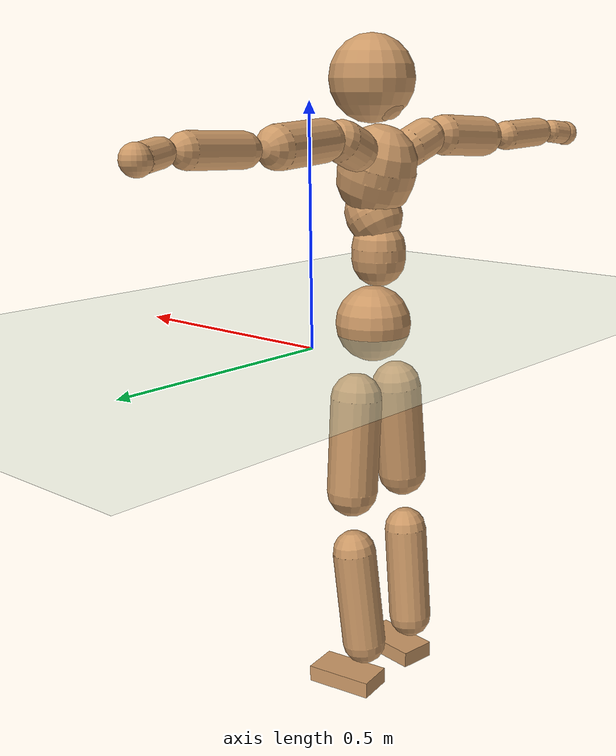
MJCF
<mujoco model="humanoid">
  <compiler coordinate="local"/>
  <default>
    <joint damping="0.0" armature="0.01" stiffness="0.0" limited="true"/>
    <geom conaffinity="1" condim="3" contype="7" margin="0.001" rgba="0.8 0.6 .4 1"/>
  </default>
  <asset>
    <texture type="skybox" builtin="gradient" rgb1=".4 .5 .6" rgb2="0 0 0" width="100" height="100"/>
    <texture builtin="flat" height="1278" mark="cross" markrgb="1 1 1" name="texgeom" random="0.01" rgb1="0.8 0.6 0.4" rgb2="0.8 0.6 0.4" type="cube" width="127"/>
    <texture builtin="checker" height="100" name="texplane" rgb1="0 0 0" rgb2="0.8 0.8 0.8" type="2d" width="100"/>
    <material name="MatPlane" reflectance="0.5" shininess="1" specular="1" texrepeat="60 60" texture="texplane"/>
    <material name="geom" texture="texgeom" texuniform="true"/>
  </asset>
  <worldbody>
    <light cutoff="100" diffuse="1 1 1" dir="-0 0 -1.3" directional="true" exponent="1" pos="0 0 1.3" specular=".1 .1 .1"/>
    <geom conaffinity="1" condim="3" name="floor" pos="0 0 0" rgba="0.8 0.9 0.8 1" size="100 100 .2" type="plane" material="MatPlane"/>
    <body name="Pelvis" pos="-0.0009 -0.198 0.0221">
      <freejoint name="Pelvis"/>
      <geom type="sphere" contype="1" conaffinity="1" density="500" size="0.0835" pos="0.0000 0.0000 0.0000" name="Pelvis"/>
      <body name="L_Hip" pos="-0.0126 0.0677 -0.0849">
        <joint name="L_Hip_x" type="hinge" pos="0 0 0" axis="1 0 0" stiffness="800" damping="80" armature="0.02" range="-180.0000 180.0000"/>
        <joint name="L_Hip_y" type="hinge" pos="0 0 0" axis="0 1 0" stiffness="800" damping="80" armature="0.02" range="-180.0000 180.0000"/>
        <joint name="L_Hip_z" type="hinge" pos="0 0 0" axis="0 0 1" stiffness="800" damping="80" armature="0.02" range="-180.0000 180.0000"/>
        <geom type="capsule" contype="1" conaffinity="1" density="500" fromto="-0.0009 0.0057 -0.0698 -0.0035 0.0229 -0.2791" size="0.0565" name="L_Hip"/>
        <body name="L_Knee" pos="-0.0043 0.0286 -0.3488">
          <joint name="L_Knee_x" type="hinge" pos="0 0 0" axis="1 0 0" stiffness="800" damping="80" armature="0.02" range="-180.0000 180.0000"/>
          <joint name="L_Knee_y" type="hinge" pos="0 0 0" axis="0 1 0" stiffness="800" damping="80" armature="0.02" range="-180.0000 180.0000"/>
          <joint name="L_Knee_z" type="hinge" pos="0 0 0" axis="0 0 1" stiffness="800" damping="80" armature="0.02" range="-180.0000 180.0000"/>
          <geom type="capsule" contype="1" conaffinity="1" density="500" fromto="-0.0081 -0.0019 -0.0724 -0.0323 -0.0078 -0.2897" size="0.0487" name="L_Knee"/>
          <body name="L_Ankle" pos="-0.0404 -0.0097 -0.3621">
            <joint name="L_Ankle_x" type="hinge" pos="0 0 0" axis="1 0 0" stiffness="800" damping="80" armature="0.02" range="-180.0000 180.0000"/>
            <joint name="L_Ankle_y" type="hinge" pos="0 0 0" axis="0 1 0" stiffness="800" damping="80" armature="0.02" range="-180.0000 180.0000"/>
            <joint name="L_Ankle_z" type="hinge" pos="0 0 0" axis="0 0 1" stiffness="800" damping="80" armature="0.02" range="-180.0000 180.0000"/>
            <geom type="box" contype="1" conaffinity="1" density="500" pos="0.0537 0.0085 -0.0260" size="0.0765 0.0408 0.0183" quat="0.9969 0.0000 0.0000 0.0784" name="L_Ankle"/>
            <body name="L_Toe" pos="0.1074 0.017 -0.052">
              <joint name="L_Toe_x" type="hinge" pos="0 0 0" axis="1 0 0" stiffness="500" damping="50" armature="0.02" range="-180.0000 180.0000"/>
              <joint name="L_Toe_y" type="hinge" pos="0 0 0" axis="0 1 0" stiffness="500" damping="50" armature="0.02" range="-180.0000 180.0000"/>
              <joint name="L_Toe_z" type="hinge" pos="0 0 0" axis="0 0 1" stiffness="500" damping="50" armature="0.02" range="-180.0000 180.0000"/>
              <geom type="box" contype="1" conaffinity="1" density="500" pos="0.0000 0.0000 0.0262" size="0.0008 0.0021 0.0009" quat="0.9963 0.0000 0.0000 0.0858" name="L_Toe"/>
            </body>
          </body>
        </body>
      </body>
      <body name="R_Hip" pos="-0.0084 -0.0649 -0.0844">
        <joint name="R_Hip_x" type="hinge" pos="0 0 0" axis="1 0 0" stiffness="800" damping="80" armature="0.02" range="-180.0000 180.0000"/>
        <joint name="R_Hip_y" type="hinge" pos="0 0 0" axis="0 1 0" stiffness="800" damping="80" armature="0.02" range="-180.0000 180.0000"/>
        <joint name="R_Hip_z" type="hinge" pos="0 0 0" axis="0 0 1" stiffness="800" damping="80" armature="0.02" range="-180.0000 180.0000"/>
        <geom type="capsule" contype="1" conaffinity="1" density="500" fromto="-0.0010 -0.0070 -0.0710 -0.0039 -0.0282 -0.2841" size="0.0561" name="R_Hip"/>
        <body name="R_Knee" pos="-0.0049 -0.0352 -0.3551">
          <joint name="R_Knee_x" type="hinge" pos="0 0 0" axis="1 0 0" stiffness="800" damping="80" armature="0.02" range="-180.0000 180.0000"/>
          <joint name="R_Knee_y" type="hinge" pos="0 0 0" axis="0 1 0" stiffness="800" damping="80" armature="0.02" range="-180.0000 180.0000"/>
          <joint name="R_Knee_z" type="hinge" pos="0 0 0" axis="0 0 1" stiffness="800" damping="80" armature="0.02" range="-180.0000 180.0000"/>
          <geom type="capsule" contype="1" conaffinity="1" density="500" fromto="-0.0076 0.0026 -0.0724 -0.0303 0.0103 -0.2895" size="0.0492" name="R_Knee"/>
          <body name="R_Ankle" pos="-0.0379 0.0129 -0.3618">
            <joint name="R_Ankle_x" type="hinge" pos="0 0 0" axis="1 0 0" stiffness="800" damping="80" armature="0.02" range="-180.0000 180.0000"/>
            <joint name="R_Ankle_y" type="hinge" pos="0 0 0" axis="0 1 0" stiffness="800" damping="80" armature="0.02" range="-180.0000 180.0000"/>
            <joint name="R_Ankle_z" type="hinge" pos="0 0 0" axis="0 0 1" stiffness="800" damping="80" armature="0.02" range="-180.0000 180.0000"/>
            <geom type="box" contype="1" conaffinity="1" density="500" pos="0.0549 -0.0071 -0.0217" size="0.0773 0.0417 0.0179" quat="0.9979 0.0000 0.0000 -0.0644" name="R_Ankle"/>
            <body name="R_Toe" pos="0.1098 -0.0142 -0.0434">
              <joint name="R_Toe_x" type="hinge" pos="0 0 0" axis="1 0 0" stiffness="500" damping="50" armature="0.02" range="-180.0000 180.0000"/>
              <joint name="R_Toe_y" type="hinge" pos="0 0 0" axis="0 1 0" stiffness="500" damping="50" armature="0.02" range="-180.0000 180.0000"/>
              <joint name="R_Toe_z" type="hinge" pos="0 0 0" axis="0 0 1" stiffness="500" damping="50" armature="0.02" range="-180.0000 180.0000"/>
              <geom type="box" contype="1" conaffinity="1" density="500" pos="0.0000 0.0000 0.0248" size="0.0007 0.0021 0.0011" quat="0.9985 0.0000 0.0000 -0.0544" name="R_Toe"/>
            </body>
          </body>
        </body>
      </body>
      <body name="Torso" pos="-0.0119 -0.0025 0.0941">
        <joint name="Torso_x" type="hinge" pos="0 0 0" axis="1 0 0" stiffness="1000" damping="100" armature="0.02" range="-180.0000 180.0000"/>
        <joint name="Torso_y" type="hinge" pos="0 0 0" axis="0 1 0" stiffness="1000" damping="100" armature="0.02" range="-180.0000 180.0000"/>
        <joint name="Torso_z" type="hinge" pos="0 0 0" axis="0 0 1" stiffness="1000" damping="100" armature="0.02" range="-180.0000 180.0000"/>
        <geom type="capsule" contype="1" conaffinity="1" density="500" fromto="-0.0015 0.0012 0.0740 -0.0010 0.0008 0.0493" size="0.0591" name="Torso"/>
        <body name="Spine" pos="-0.0025 0.0019 0.1233">
          <joint name="Spine_x" type="hinge" pos="0 0 0" axis="1 0 0" stiffness="1000" damping="100" armature="0.02" range="-180.0000 180.0000"/>
          <joint name="Spine_y" type="hinge" pos="0 0 0" axis="0 1 0" stiffness="1000" damping="100" armature="0.02" range="-180.0000 180.0000"/>
          <joint name="Spine_z" type="hinge" pos="0 0 0" axis="0 0 1" stiffness="1000" damping="100" armature="0.02" range="-180.0000 180.0000"/>
          <geom type="capsule" contype="1" conaffinity="1" density="500" fromto="0.0161 0.0017 0.0269 0.0107 0.0012 0.0179" size="0.0615" name="Spine"/>
          <body name="Chest" pos="0.0268 0.0029 0.0448">
            <joint name="Chest_x" type="hinge" pos="0 0 0" axis="1 0 0" stiffness="1000" damping="100" armature="0.02" range="-180.0000 180.0000"/>
            <joint name="Chest_y" type="hinge" pos="0 0 0" axis="0 1 0" stiffness="1000" damping="100" armature="0.02" range="-180.0000 180.0000"/>
            <joint name="Chest_z" type="hinge" pos="0 0 0" axis="0 0 1" stiffness="1000" damping="100" armature="0.02" range="-180.0000 180.0000"/>
            <geom type="capsule" contype="1" conaffinity="1" density="500" fromto="-0.0275 -0.0007 0.0836 -0.0183 -0.0004 0.0557" size="0.0841" name="Chest"/>
            <body name="Neck" pos="-0.0566 -0.0026 0.1987">
              <joint name="Neck_x" type="hinge" pos="0 0 0" axis="1 0 0" stiffness="500" damping="50" armature="0.02" range="-180.0000 180.0000"/>
              <joint name="Neck_y" type="hinge" pos="0 0 0" axis="0 1 0" stiffness="500" damping="50" armature="0.02" range="-180.0000 180.0000"/>
              <joint name="Neck_z" type="hinge" pos="0 0 0" axis="0 0 1" stiffness="500" damping="50" armature="0.02" range="-180.0000 180.0000"/>
              <geom type="capsule" contype="1" conaffinity="1" density="500" fromto="0.0094 0.0006 0.0121 0.0378 0.0023 0.0485" size="0.0364" name="Neck"/>
              <body name="Head" pos="0.0472 0.0029 0.0606">
                <joint name="Head_x" type="hinge" pos="0 0 0" axis="1 0 0" stiffness="500" damping="50" armature="0.02" range="-180.0000 180.0000"/>
                <joint name="Head_y" type="hinge" pos="0 0 0" axis="0 1 0" stiffness="500" damping="50" armature="0.02" range="-180.0000 180.0000"/>
                <joint name="Head_z" type="hinge" pos="0 0 0" axis="0 0 1" stiffness="500" damping="50" armature="0.02" range="-180.0000 180.0000"/>
                <geom type="sphere" contype="1" conaffinity="1" density="500" size="0.0919" pos="0.0000 0.0000 0.0000" name="Head"/>
              </body>
            </body>
            <body name="L_Thorax" pos="-0.0378 0.0678 0.1104">
              <joint name="L_Thorax_x" type="hinge" pos="0 0 0" axis="1 0 0" stiffness="500" damping="50" armature="0.02" range="-180.0000 180.0000"/>
              <joint name="L_Thorax_y" type="hinge" pos="0 0 0" axis="0 1 0" stiffness="500" damping="50" armature="0.02" range="-180.0000 180.0000"/>
              <joint name="L_Thorax_z" type="hinge" pos="0 0 0" axis="0 0 1" stiffness="500" damping="50" armature="0.02" range="-180.0000 180.0000"/>
              <geom type="capsule" contype="1" conaffinity="1" density="500" fromto="-0.0007 0.0155 0.0064 -0.0026 0.0619 0.0256" size="0.0441" name="L_Thorax"/>
              <body name="L_Shoulder" pos="-0.0033 0.0774 0.032">
                <joint name="L_Shoulder_x" type="hinge" pos="0 0 0" axis="1 0 0" stiffness="500" damping="50" armature="0.02" range="-720.0000 720.0000"/>
                <joint name="L_Shoulder_y" type="hinge" pos="0 0 0" axis="0 1 0" stiffness="500" damping="50" armature="0.02" range="-720.0000 720.0000"/>
                <joint name="L_Shoulder_z" type="hinge" pos="0 0 0" axis="0 0 1" stiffness="500" damping="50" armature="0.02" range="-720.0000 720.0000"/>
                <geom type="capsule" contype="1" conaffinity="1" density="500" fromto="-0.0049 0.0477 -0.0022 -0.0198 0.1908 -0.0090" size="0.0436" name="L_Shoulder"/>
                <body name="L_Elbow" pos="-0.0247 0.2385 -0.0112">
                  <joint name="L_Elbow_x" type="hinge" pos="0 0 0" axis="1 0 0" stiffness="500" damping="50" armature="0.02" range="-720.0000 720.0000"/>
                  <joint name="L_Elbow_y" type="hinge" pos="0 0 0" axis="0 1 0" stiffness="500" damping="50" armature="0.02" range="-720.0000 720.0000"/>
                  <joint name="L_Elbow_z" type="hinge" pos="0 0 0" axis="0 0 1" stiffness="500" damping="50" armature="0.02" range="-720.0000 720.0000"/>
                  <geom type="capsule" contype="1" conaffinity="1" density="500" fromto="0.0001 0.0444 0.0016 0.0003 0.1774 0.0064" size="0.0342" name="L_Elbow"/>
                  <body name="L_Wrist" pos="0.0003 0.2218 0.008">
                    <joint name="L_Wrist_x" type="hinge" pos="0 0 0" axis="1 0 0" stiffness="300" damping="30" armature="0.02" range="-180.0000 180.0000"/>
                    <joint name="L_Wrist_y" type="hinge" pos="0 0 0" axis="0 1 0" stiffness="300" damping="30" armature="0.02" range="-180.0000 180.0000"/>
                    <joint name="L_Wrist_z" type="hinge" pos="0 0 0" axis="0 0 1" stiffness="300" damping="30" armature="0.02" range="-180.0000 180.0000"/>
                    <geom type="capsule" contype="1" conaffinity="1" density="500" fromto="-0.0022 0.0144 -0.0022 -0.0087 0.0576 -0.0088" size="0.027" name="L_Wrist"/>
                    <body name="L_Hand" pos="-0.0109 0.0719 -0.011">
                      <joint name="L_Hand_x" type="hinge" pos="0 0 0" axis="1 0 0" stiffness="300" damping="30" armature="0.02" range="-180.0000 180.0000"/>
                      <joint name="L_Hand_y" type="hinge" pos="0 0 0" axis="0 1 0" stiffness="300" damping="30" armature="0.02" range="-180.0000 180.0000"/>
                      <joint name="L_Hand_z" type="hinge" pos="0 0 0" axis="0 0 1" stiffness="300" damping="30" armature="0.02" range="-180.0000 180.0000"/>
                      <geom type="sphere" contype="1" conaffinity="1" density="500" size="0.0293" pos="0.0000 0.0000 0.0000" name="L_Hand"/>
                    </body>
                  </body>
                </body>
              </body>
            </body>
            <body name="R_Thorax" pos="-0.0429 -0.0686 0.1088">
              <joint name="R_Thorax_x" type="hinge" pos="0 0 0" axis="1 0 0" stiffness="500" damping="50" armature="0.02" range="-180.0000 180.0000"/>
              <joint name="R_Thorax_y" type="hinge" pos="0 0 0" axis="0 1 0" stiffness="500" damping="50" armature="0.02" range="-180.0000 180.0000"/>
              <joint name="R_Thorax_z" type="hinge" pos="0 0 0" axis="0 0 1" stiffness="500" damping="50" armature="0.02" range="-180.0000 180.0000"/>
              <geom type="capsule" contype="1" conaffinity="1" density="500" fromto="-0.0018 -0.0158 0.0064 -0.0073 -0.0632 0.0258" size="0.0429" name="R_Thorax"/>
              <body name="R_Shoulder" pos="-0.0091 -0.0789 0.0322">
                <joint name="R_Shoulder_x" type="hinge" pos="0 0 0" axis="1 0 0" stiffness="500" damping="50" armature="0.02" range="-720.0000 720.0000"/>
                <joint name="R_Shoulder_y" type="hinge" pos="0 0 0" axis="0 1 0" stiffness="500" damping="50" armature="0.02" range="-720.0000 720.0000"/>
                <joint name="R_Shoulder_z" type="hinge" pos="0 0 0" axis="0 0 1" stiffness="500" damping="50" armature="0.02" range="-720.0000 720.0000"/>
                <geom type="capsule" contype="1" conaffinity="1" density="500" fromto="-0.0031 -0.0464 -0.0025 -0.0124 -0.1855 -0.0100" size="0.0447" name="R_Shoulder"/>
                <body name="R_Elbow" pos="-0.0155 -0.2319 -0.0125">
                  <joint name="R_Elbow_x" type="hinge" pos="0 0 0" axis="1 0 0" stiffness="500" damping="50" armature="0.02" range="-720.0000 720.0000"/>
                  <joint name="R_Elbow_y" type="hinge" pos="0 0 0" axis="0 1 0" stiffness="500" damping="50" armature="0.02" range="-720.0000 720.0000"/>
                  <joint name="R_Elbow_z" type="hinge" pos="0 0 0" axis="0 0 1" stiffness="500" damping="50" armature="0.02" range="-720.0000 720.0000"/>
                  <geom type="capsule" contype="1" conaffinity="1" density="500" fromto="-0.0007 -0.0458 0.0015 -0.0026 -0.1832 0.0059" size="0.0339" name="R_Elbow"/>
                  <body name="R_Wrist" pos="-0.0033 -0.229 0.0073">
                    <joint name="R_Wrist_x" type="hinge" pos="0 0 0" axis="1 0 0" stiffness="300" damping="30" armature="0.02" range="-180.0000 180.0000"/>
                    <joint name="R_Wrist_y" type="hinge" pos="0 0 0" axis="0 1 0" stiffness="300" damping="30" armature="0.02" range="-180.0000 180.0000"/>
                    <joint name="R_Wrist_z" type="hinge" pos="0 0 0" axis="0 0 1" stiffness="300" damping="30" armature="0.02" range="-180.0000 180.0000"/>
                    <geom type="capsule" contype="1" conaffinity="1" density="500" fromto="-0.0020 -0.0145 -0.0016 -0.0079 -0.0578 -0.0065" size="0.0274" name="R_Wrist"/>
                    <body name="R_Hand" pos="-0.0099 -0.0723 -0.0082">
                      <joint name="R_Hand_x" type="hinge" pos="0 0 0" axis="1 0 0" stiffness="300" damping="30" armature="0.02" range="-180.0000 180.0000"/>
                      <joint name="R_Hand_y" type="hinge" pos="0 0 0" axis="0 1 0" stiffness="300" damping="30" armature="0.02" range="-180.0000 180.0000"/>
                      <joint name="R_Hand_z" type="hinge" pos="0 0 0" axis="0 0 1" stiffness="300" damping="30" armature="0.02" range="-180.0000 180.0000"/>
                      <geom type="sphere" contype="1" conaffinity="1" density="500" size="0.0292" pos="0.0000 0.0000 0.0000" name="R_Hand"/>
                    </body>
                  </body>
                </body>
              </body>
            </body>
          </body>
        </body>
      </body>
    </body>
  </worldbody>
  <actuator>
    <motor name="L_Hip_x" joint="L_Hip_x" gear="500"/>
    <motor name="L_Hip_y" joint="L_Hip_y" gear="500"/>
    <motor name="L_Hip_z" joint="L_Hip_z" gear="500"/>
    <motor name="L_Knee_x" joint="L_Knee_x" gear="500"/>
    <motor name="L_Knee_y" joint="L_Knee_y" gear="500"/>
    <motor name="L_Knee_z" joint="L_Knee_z" gear="500"/>
    <motor name="L_Ankle_x" joint="L_Ankle_x" gear="500"/>
    <motor name="L_Ankle_y" joint="L_Ankle_y" gear="500"/>
    <motor name="L_Ankle_z" joint="L_Ankle_z" gear="500"/>
    <motor name="L_Toe_x" joint="L_Toe_x" gear="500"/>
    <motor name="L_Toe_y" joint="L_Toe_y" gear="500"/>
    <motor name="L_Toe_z" joint="L_Toe_z" gear="500"/>
    <motor name="R_Hip_x" joint="R_Hip_x" gear="500"/>
    <motor name="R_Hip_y" joint="R_Hip_y" gear="500"/>
    <motor name="R_Hip_z" joint="R_Hip_z" gear="500"/>
    <motor name="R_Knee_x" joint="R_Knee_x" gear="500"/>
    <motor name="R_Knee_y" joint="R_Knee_y" gear="500"/>
    <motor name="R_Knee_z" joint="R_Knee_z" gear="500"/>
    <motor name="R_Ankle_x" joint="R_Ankle_x" gear="500"/>
    <motor name="R_Ankle_y" joint="R_Ankle_y" gear="500"/>
    <motor name="R_Ankle_z" joint="R_Ankle_z" gear="500"/>
    <motor name="R_Toe_x" joint="R_Toe_x" gear="500"/>
    <motor name="R_Toe_y" joint="R_Toe_y" gear="500"/>
    <motor name="R_Toe_z" joint="R_Toe_z" gear="500"/>
    <motor name="Torso_x" joint="Torso_x" gear="500"/>
    <motor name="Torso_y" joint="Torso_y" gear="500"/>
    <motor name="Torso_z" joint="Torso_z" gear="500"/>
    <motor name="Spine_x" joint="Spine_x" gear="500"/>
    <motor name="Spine_y" joint="Spine_y" gear="500"/>
    <motor name="Spine_z" joint="Spine_z" gear="500"/>
    <motor name="Chest_x" joint="Chest_x" gear="500"/>
    <motor name="Chest_y" joint="Chest_y" gear="500"/>
    <motor name="Chest_z" joint="Chest_z" gear="500"/>
    <motor name="Neck_x" joint="Neck_x" gear="500"/>
    <motor name="Neck_y" joint="Neck_y" gear="500"/>
    <motor name="Neck_z" joint="Neck_z" gear="500"/>
    <motor name="Head_x" joint="Head_x" gear="500"/>
    <motor name="Head_y" joint="Head_y" gear="500"/>
    <motor name="Head_z" joint="Head_z" gear="500"/>
    <motor name="L_Thorax_x" joint="L_Thorax_x" gear="500"/>
    <motor name="L_Thorax_y" joint="L_Thorax_y" gear="500"/>
    <motor name="L_Thorax_z" joint="L_Thorax_z" gear="500"/>
    <motor name="L_Shoulder_x" joint="L_Shoulder_x" gear="500"/>
    <motor name="L_Shoulder_y" joint="L_Shoulder_y" gear="500"/>
    <motor name="L_Shoulder_z" joint="L_Shoulder_z" gear="500"/>
    <motor name="L_Elbow_x" joint="L_Elbow_x" gear="500"/>
    <motor name="L_Elbow_y" joint="L_Elbow_y" gear="500"/>
    <motor name="L_Elbow_z" joint="L_Elbow_z" gear="500"/>
    <motor name="L_Wrist_x" joint="L_Wrist_x" gear="500"/>
    <motor name="L_Wrist_y" joint="L_Wrist_y" gear="500"/>
    <motor name="L_Wrist_z" joint="L_Wrist_z" gear="500"/>
    <motor name="L_Hand_x" joint="L_Hand_x" gear="500"/>
    <motor name="L_Hand_y" joint="L_Hand_y" gear="500"/>
    <motor name="L_Hand_z" joint="L_Hand_z" gear="500"/>
    <motor name="R_Thorax_x" joint="R_Thorax_x" gear="500"/>
    <motor name="R_Thorax_y" joint="R_Thorax_y" gear="500"/>
    <motor name="R_Thorax_z" joint="R_Thorax_z" gear="500"/>
    <motor name="R_Shoulder_x" joint="R_Shoulder_x" gear="500"/>
    <motor name="R_Shoulder_y" joint="R_Shoulder_y" gear="500"/>
    <motor name="R_Shoulder_z" joint="R_Shoulder_z" gear="500"/>
    <motor name="R_Elbow_x" joint="R_Elbow_x" gear="500"/>
    <motor name="R_Elbow_y" joint="R_Elbow_y" gear="500"/>
    <motor name="R_Elbow_z" joint="R_Elbow_z" gear="500"/>
    <motor name="R_Wrist_x" joint="R_Wrist_x" gear="500"/>
    <motor name="R_Wrist_y" joint="R_Wrist_y" gear="500"/>
    <motor name="R_Wrist_z" joint="R_Wrist_z" gear="500"/>
    <motor name="R_Hand_x" joint="R_Hand_x" gear="500"/>
    <motor name="R_Hand_y" joint="R_Hand_y" gear="500"/>
    <motor name="R_Hand_z" joint="R_Hand_z" gear="500"/>
  </actuator>
  <contact>
    <exclude body1="Torso" body2="Chest"/>
    <exclude body1="Head" body2="Chest"/>
    <exclude body1="R_Knee" body2="R_Toe"/>
    <exclude body1="R_Knee" body2="L_Ankle"/>
    <exclude body1="R_Knee" body2="L_Toe"/>
    <exclude body1="L_Knee" body2="L_Toe"/>
    <exclude body1="L_Knee" body2="R_Ankle"/>
    <exclude body1="L_Knee" body2="R_Toe"/>
    <exclude body1="L_Shoulder" body2="Chest"/>
    <exclude body1="R_Shoulder" body2="Chest"/>
  </contact>
  <sensor/>
  <size njmax="700" nconmax="700"/>
</mujoco>
